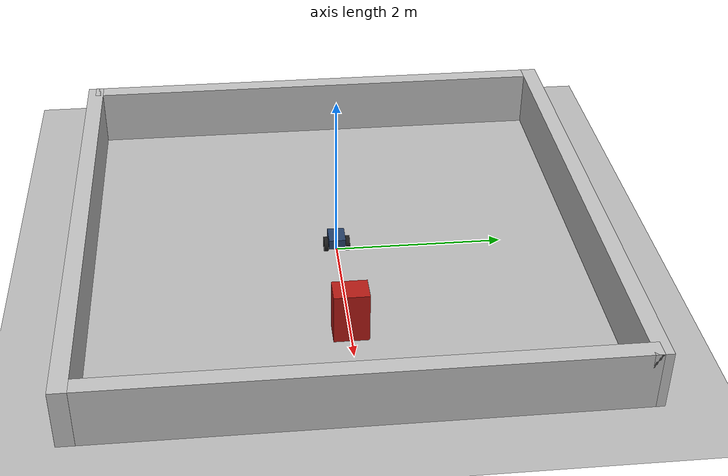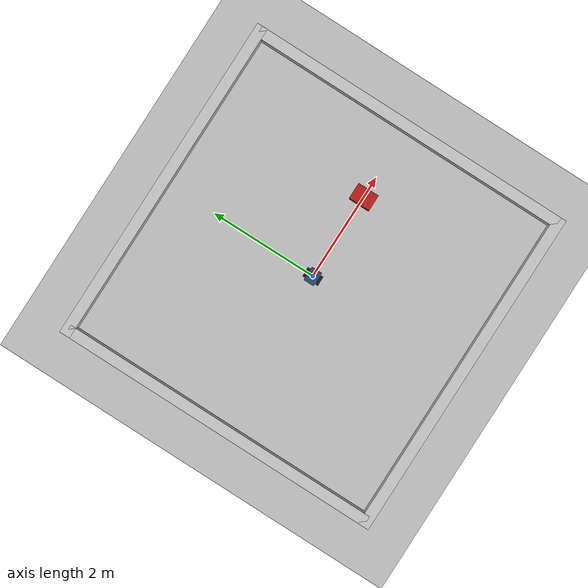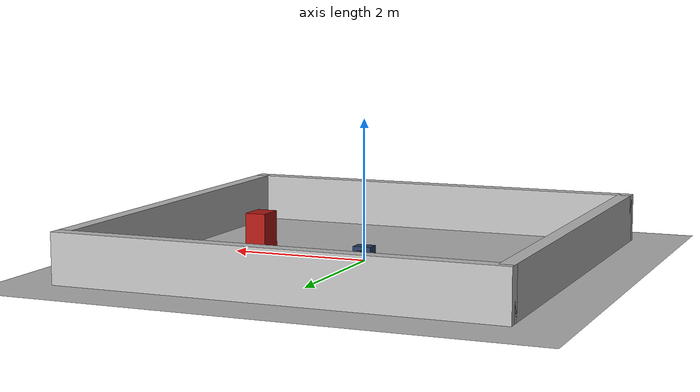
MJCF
<mujoco model="TASS whole CNS observations">
  <compiler angle="degree"/>
  <option timestep="0.005" gravity="0 0 -9.81"/>
  <visual><global offwidth="320" offheight="240"/><headlight ambient="0.3 0.3 0.3" diffuse="0.4 0.4 0.4"/></visual>
  <asset>
    <texture name="checker" type="2d" builtin="checker" rgb1="0.6 0.6 0.6" rgb2="0.85 0.85 0.85" width="256" height="256"/>
    <material name="floor" texture="checker" texrepeat="8 8"/>
  </asset>
  <default><geom friction="1.5 0.01 0.001"/><joint damping="0.05"/></default>
  <worldbody>
    <light name="stimulus_light" pos="0 0 4" diffuse="0.7 0.7 0.7"/>
    <geom name="floor" type="plane" size="4 4 0.1" material="floor"/>
    <geom name="wall_n" type="box" pos="0 3 0.35" size="3.1 0.1 0.35" rgba="0.75 0.75 0.75 1"/>
    <geom name="wall_s" type="box" pos="0 -3 0.35" size="3.1 0.1 0.35" rgba="0.75 0.75 0.75 1"/>
    <geom name="wall_e" type="box" pos="3 0 0.35" size="0.1 3 0.35" rgba="0.75 0.75 0.75 1"/>
    <geom name="wall_w" type="box" pos="-3 0 0.35" size="0.1 3 0.35" rgba="0.75 0.75 0.75 1"/>
    <body name="target" mocap="true" pos="1.6 0 0.3">
      <geom name="moving_object" type="box" size="0.15 0.2 0.3" rgba="0.7 0.1 0.08 1"/>
    </body>
    <!-- Height constraint and 5 mm contact preload are robot proxy assumptions. -->
    <body name="robot" pos="0 0 0.155">
      <joint name="x" type="slide" axis="1 0 0" damping="0"/>
      <joint name="y" type="slide" axis="0 1 0" damping="0"/>
      <joint name="heading" type="hinge" axis="0 0 1" damping="0"/>
      <geom name="chassis" type="box" size="0.13 0.1 0.06" mass="0.5" rgba="0.15 0.25 0.4 1"/>
      <camera name="eye" pos="0.14 0 0.09" xyaxes="0 -1 0 0 0 1" fovy="70"/>
      <body name="left_wheel" pos="0 0.13 -0.07">
        <joint name="left_motor" type="hinge" axis="0 1 0"/>
        <geom name="left_tire" type="cylinder" size="0.09 0.025" euler="90 0 0" mass="0.08" rgba="0.1 0.1 0.1 1"/>
      </body>
      <body name="right_wheel" pos="0 -0.13 -0.07">
        <joint name="right_motor" type="hinge" axis="0 1 0"/>
        <geom name="right_tire" type="cylinder" size="0.09 0.025" euler="90 0 0" mass="0.08" rgba="0.1 0.1 0.1 1"/>
      </body>
    </body>
  </worldbody>
  <actuator>
    <velocity name="left_drive" joint="left_motor" kv="1" ctrllimited="true" ctrlrange="-15 15" forcelimited="true" forcerange="-1 1"/>
    <velocity name="right_drive" joint="right_motor" kv="1" ctrllimited="true" ctrlrange="-15 15" forcelimited="true" forcerange="-1 1"/>
  </actuator>
</mujoco>
